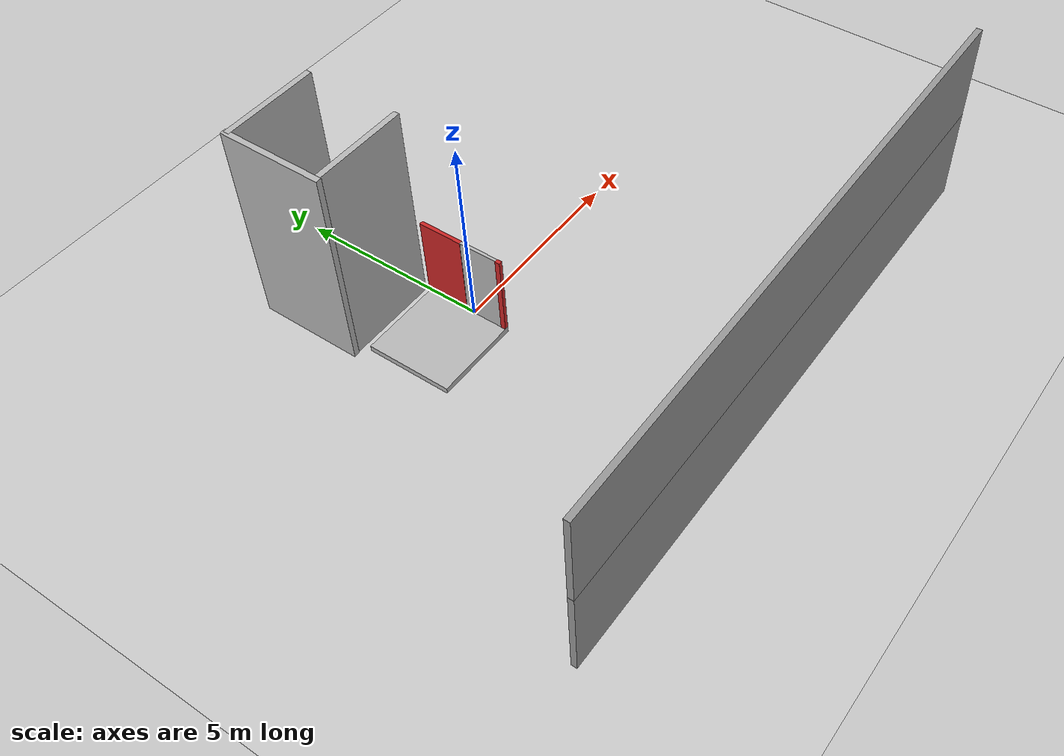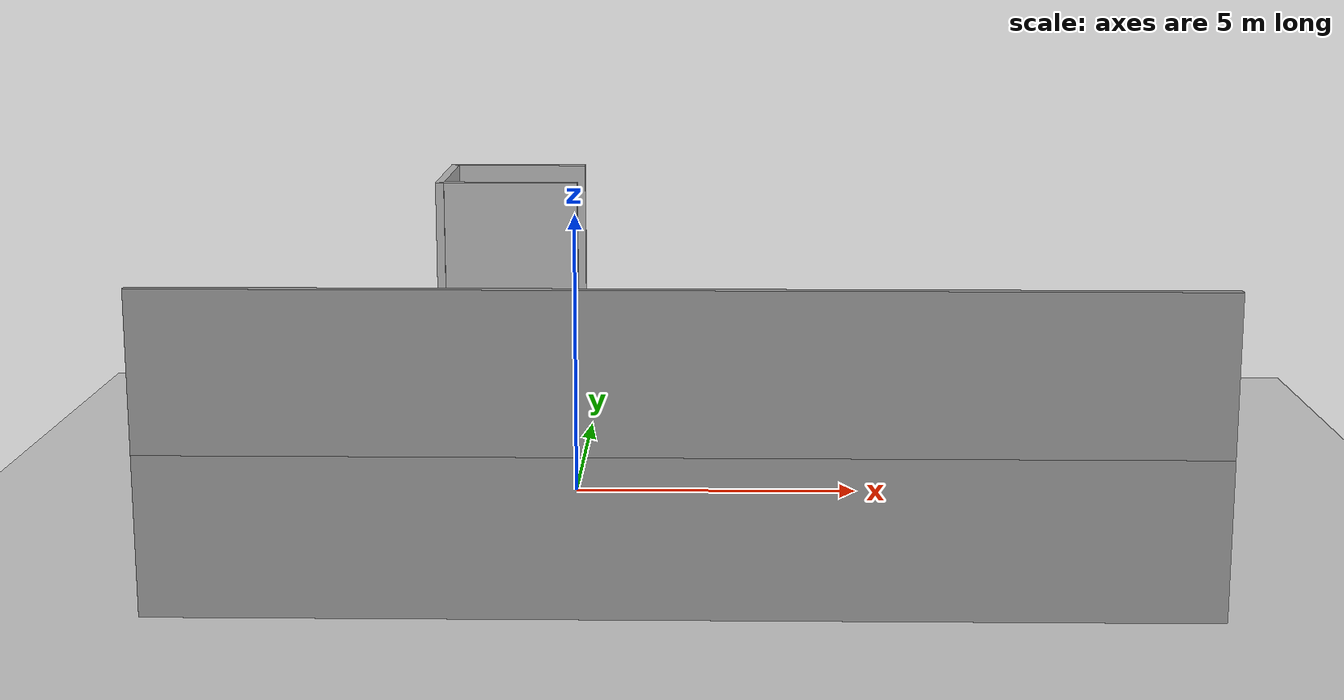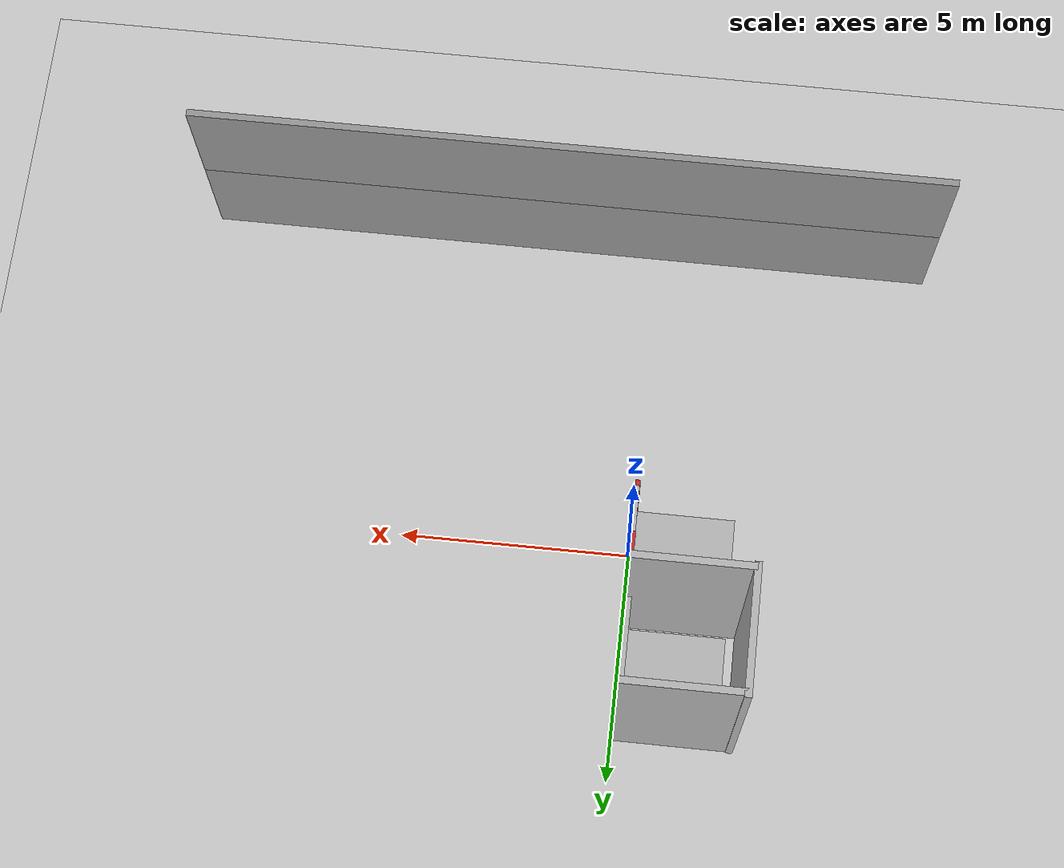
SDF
<sdf version="1.6">
 <world name="default">
  <model name="ground_plane">
   <static>1</static>
   <link name="link">
    <collision name="collision">
     <geometry><plane><normal>0 0 1</normal><size>100 100</size></plane></geometry>
     <surface>
      <contact><collide_bitmask>65535</collide_bitmask></contact>
      <friction><ode><mu>100</mu><mu2>50</mu2></ode></friction>
     </surface>
    </collision>
    <visual name="visual">
     <cast_shadows>0</cast_shadows>
     <geometry><plane><normal>0 0 1</normal><size>100 100</size></plane></geometry>
     <material>
      <script><uri>file://media/materials/scripts/gazebo.material</uri><name>Gazebo/Grey</name></script>
     </material>
    </visual>
   </link>
  </model>
  <model name="bush_refined_2floors">
   <pose>3.42472 8.10808 0 0 -0 0</pose>
   <link name="Wall_57">
    <collision name="Wall_57_Collision">
     <geometry><box><size>16.25 0.15 2.5</size></box></geometry>
     <pose>0 0 1.25 0 -0 0</pose>
    </collision>
    <visual name="Wall_57_Visual">
     <pose>0 0 1.25 0 -0 0</pose>
     <geometry><box><size>16.25 0.15 2.5</size></box></geometry>
     <material>
      <script><uri>file://media/materials/scripts/gazebo.material</uri><name>Gazebo/Grey</name></script>
      <ambient>1 1 1 1</ambient>
     </material>
     <meta><layer>0</layer></meta>
    </visual>
    <pose>-1.41697 -15.3834 0 0 -0 0</pose>
   </link>
   <link name="Wall_990">
    <collision name="Wall_990_Collision">
     <geometry><box><size>16.25 0.15 2.5</size></box></geometry>
     <pose>0 0 1.25 0 -0 0</pose>
    </collision>
    <visual name="Wall_990_Visual">
     <pose>0 0 1.25 0 -0 0</pose>
     <geometry><box><size>16.25 0.15 2.5</size></box></geometry>
     <material>
      <script><uri>file://media/materials/scripts/gazebo.material</uri><name>Gazebo/Grey</name></script>
      <ambient>1 1 1 1</ambient>
     </material>
     <meta><layer>1</layer></meta>
    </visual>
    <pose>-1.41697 -15.3834 2.5 0 -0 0</pose>
   </link>
   <static>1</static>
  </model>
  <model name="elevator_shaft">
   <link name="link">
    <visual name="shaft_wall2_visual">
     <pose>0 -1.25 3 0 -0 0</pose>
     <geometry><box><size>2.5 0.15 6</size></box></geometry>
    </visual>
    <visual name="shaft_wall3_visual">
     <pose>-1.25 0 3 0 -0 0</pose>
     <geometry><box><size>0.15 2.7 6</size></box></geometry>
    </visual>
    <visual name="floor0_visual">
     <pose>1.19 0 0.075 0 -0 0</pose>
     <geometry><box><size>0.12 2.5 0.15</size></box></geometry>
    </visual>
    <visual name="floor1_visual">
     <pose>1.19 0 3.075 0 -0 0</pose>
     <geometry><box><size>0.12 2.5 0.15</size></box></geometry>
    </visual>
    <visual name="shaft_wall1_visual">
     <pose>0 1.25 3 0 -0 0</pose>
     <geometry><box><size>2.5 0.15 6</size></box></geometry>
    </visual>
    <collision name="shaft_wall1_collision">
     <pose>0 1.25 3 0 -0 0</pose>
     <geometry><box><size>2.5 0.15 6</size></box></geometry>
     <surface>
      <friction>
       <ode><mu>1</mu><mu2>1</mu2><fdir1>0 0 0</fdir1><slip1>0</slip1><slip2>0</slip2></ode>
       <torsional>
        <coefficient>1</coefficient>
        <patch_radius>0</patch_radius>
        <surface_radius>0</surface_radius>
        <use_patch_radius>1</use_patch_radius>
        <ode><slip>0</slip></ode>
       </torsional>
      </friction>
      <bounce><restitution_coefficient>0</restitution_coefficient><threshold>1e+06</threshold></bounce>
      <contact>
       <collide_without_contact>0</collide_without_contact>
       <collide_without_contact_bitmask>1</collide_without_contact_bitmask>
       <collide_bitmask>1</collide_bitmask>
       <ode>
        <soft_cfm>0</soft_cfm>
        <soft_erp>0.2</soft_erp>
        <kp>1e+13</kp>
        <kd>1</kd>
        <max_vel>0.01</max_vel>
        <min_depth>0</min_depth>
       </ode>
       <bullet>
        <split_impulse>1</split_impulse>
        <split_impulse_penetration_threshold>-0.01</split_impulse_penetration_threshold>
        <soft_cfm>0</soft_cfm>
        <soft_erp>0.2</soft_erp>
        <kp>1e+13</kp>
        <kd>1</kd>
       </bullet>
      </contact>
     </surface>
    </collision>
    <collision name="shaft_wall2_collision">
     <pose>0 -1.25 3 0 -0 0</pose>
     <geometry><box><size>2.5 0.15 6</size></box></geometry>
     <surface>
      <friction>
       <ode><mu>1</mu><mu2>1</mu2><fdir1>0 0 0</fdir1><slip1>0</slip1><slip2>0</slip2></ode>
       <torsional>
        <coefficient>1</coefficient>
        <patch_radius>0</patch_radius>
        <surface_radius>0</surface_radius>
        <use_patch_radius>1</use_patch_radius>
        <ode><slip>0</slip></ode>
       </torsional>
      </friction>
      <bounce><restitution_coefficient>0</restitution_coefficient><threshold>1e+06</threshold></bounce>
      <contact>
       <collide_without_contact>0</collide_without_contact>
       <collide_without_contact_bitmask>1</collide_without_contact_bitmask>
       <collide_bitmask>1</collide_bitmask>
       <ode>
        <soft_cfm>0</soft_cfm>
        <soft_erp>0.2</soft_erp>
        <kp>1e+13</kp>
        <kd>1</kd>
        <max_vel>0.01</max_vel>
        <min_depth>0</min_depth>
       </ode>
       <bullet>
        <split_impulse>1</split_impulse>
        <split_impulse_penetration_threshold>-0.01</split_impulse_penetration_threshold>
        <soft_cfm>0</soft_cfm>
        <soft_erp>0.2</soft_erp>
        <kp>1e+13</kp>
        <kd>1</kd>
       </bullet>
      </contact>
     </surface>
    </collision>
    <collision name="shaft_wall3_collision">
     <pose>-1.25 0 3 0 -0 0</pose>
     <geometry><box><size>0.15 2.7 6</size></box></geometry>
     <surface>
      <friction>
       <ode><mu>1</mu><mu2>1</mu2><fdir1>0 0 0</fdir1><slip1>0</slip1><slip2>0</slip2></ode>
       <torsional>
        <coefficient>1</coefficient>
        <patch_radius>0</patch_radius>
        <surface_radius>0</surface_radius>
        <use_patch_radius>1</use_patch_radius>
        <ode><slip>0</slip></ode>
       </torsional>
      </friction>
      <bounce><restitution_coefficient>0</restitution_coefficient><threshold>1e+06</threshold></bounce>
      <contact>
       <collide_without_contact>0</collide_without_contact>
       <collide_without_contact_bitmask>1</collide_without_contact_bitmask>
       <collide_bitmask>1</collide_bitmask>
       <ode>
        <soft_cfm>0</soft_cfm>
        <soft_erp>0.2</soft_erp>
        <kp>1e+13</kp>
        <kd>1</kd>
        <max_vel>0.01</max_vel>
        <min_depth>0</min_depth>
       </ode>
       <bullet>
        <split_impulse>1</split_impulse>
        <split_impulse_penetration_threshold>-0.01</split_impulse_penetration_threshold>
        <soft_cfm>0</soft_cfm>
        <soft_erp>0.2</soft_erp>
        <kp>1e+13</kp>
        <kd>1</kd>
       </bullet>
      </contact>
     </surface>
    </collision>
    <collision name="floor0_collision">
     <pose>1.19 0 0.075 0 -0 0</pose>
     <geometry><box><size>0.12 2.5 0.15</size></box></geometry>
     <surface>
      <friction>
       <ode><mu>1</mu><mu2>1</mu2><fdir1>0 0 0</fdir1><slip1>0</slip1><slip2>0</slip2></ode>
       <torsional>
        <coefficient>1</coefficient>
        <patch_radius>0</patch_radius>
        <surface_radius>0</surface_radius>
        <use_patch_radius>1</use_patch_radius>
        <ode><slip>0</slip></ode>
       </torsional>
      </friction>
      <bounce><restitution_coefficient>0</restitution_coefficient><threshold>1e+06</threshold></bounce>
      <contact>
       <collide_without_contact>0</collide_without_contact>
       <collide_without_contact_bitmask>1</collide_without_contact_bitmask>
       <collide_bitmask>1</collide_bitmask>
       <ode>
        <soft_cfm>0</soft_cfm>
        <soft_erp>0.2</soft_erp>
        <kp>1e+13</kp>
        <kd>1</kd>
        <max_vel>0.01</max_vel>
        <min_depth>0</min_depth>
       </ode>
       <bullet>
        <split_impulse>1</split_impulse>
        <split_impulse_penetration_threshold>-0.01</split_impulse_penetration_threshold>
        <soft_cfm>0</soft_cfm>
        <soft_erp>0.2</soft_erp>
        <kp>1e+13</kp>
        <kd>1</kd>
       </bullet>
      </contact>
     </surface>
    </collision>
    <collision name="floor1_collision">
     <pose>1.19 0 3.075 0 -0 0</pose>
     <geometry><box><size>0.12 2.5 0.15</size></box></geometry>
     <surface>
      <friction>
       <ode><mu>1</mu><mu2>1</mu2><fdir1>0 0 0</fdir1><slip1>0</slip1><slip2>0</slip2></ode>
       <torsional>
        <coefficient>1</coefficient>
        <patch_radius>0</patch_radius>
        <surface_radius>0</surface_radius>
        <use_patch_radius>1</use_patch_radius>
        <ode><slip>0</slip></ode>
       </torsional>
      </friction>
      <bounce><restitution_coefficient>0</restitution_coefficient><threshold>1e+06</threshold></bounce>
      <contact>
       <collide_without_contact>0</collide_without_contact>
       <collide_without_contact_bitmask>1</collide_without_contact_bitmask>
       <collide_bitmask>1</collide_bitmask>
       <ode>
        <soft_cfm>0</soft_cfm>
        <soft_erp>0.2</soft_erp>
        <kp>1e+13</kp>
        <kd>1</kd>
        <max_vel>0.01</max_vel>
        <min_depth>0</min_depth>
       </ode>
       <bullet>
        <split_impulse>1</split_impulse>
        <split_impulse_penetration_threshold>-0.01</split_impulse_penetration_threshold>
        <soft_cfm>0</soft_cfm>
        <soft_erp>0.2</soft_erp>
        <kp>1e+13</kp>
        <kd>1</kd>
       </bullet>
      </contact>
     </surface>
    </collision>
   </link>
   <static>1</static>
   <pose>-1.29495 2.76524 -0.62939 0 -0 0</pose>
  </model>
  <model name="elevator_0">
   <link name="link">
    <inertial>
     <mass>800</mass>
     <inertia><ixx>1</ixx><ixy>0</ixy><ixz>0</ixz><iyy>1</iyy><iyz>0</iyz><izz>1</izz></inertia>
    </inertial>
    <visual name="floor_visual"><geometry><box><size>2.25 2.25 0.15</size></box></geometry></visual>
    <visual name="wall1_visual">
     <pose>1.0745 0.5725 1.125 0 -0 0</pose>
     <geometry><box><size>0.1 1.15 2.25</size></box></geometry>
     <material><script><name>Gazebo/Red</name><uri>__default__</uri></script></material>
    </visual>
    <visual name="wall2_visual">
     <pose>1.0745 -1.0625 1.125 0 -0 0</pose>
     <geometry><box><size>0.1 0.125 2.25</size></box></geometry>
     <material><script><name>Gazebo/Red</name><uri>__default__</uri></script></material>
    </visual>
    <collision name="wall1_collision">
     <pose>1.0745 0.5725 1.125 0 -0 0</pose>
     <geometry><box><size>0.1 1.15 2.25</size></box></geometry>
     <surface>
      <friction>
       <ode><mu>1</mu><mu2>1</mu2><fdir1>0 0 0</fdir1><slip1>0</slip1><slip2>0</slip2></ode>
       <torsional>
        <coefficient>1</coefficient>
        <patch_radius>0</patch_radius>
        <surface_radius>0</surface_radius>
        <use_patch_radius>1</use_patch_radius>
        <ode><slip>0</slip></ode>
       </torsional>
      </friction>
      <bounce><restitution_coefficient>0</restitution_coefficient><threshold>1e+06</threshold></bounce>
      <contact>
       <collide_without_contact>0</collide_without_contact>
       <collide_without_contact_bitmask>1</collide_without_contact_bitmask>
       <collide_bitmask>1</collide_bitmask>
       <ode>
        <soft_cfm>0</soft_cfm>
        <soft_erp>0.2</soft_erp>
        <kp>1e+13</kp>
        <kd>1</kd>
        <max_vel>0.01</max_vel>
        <min_depth>0</min_depth>
       </ode>
       <bullet>
        <split_impulse>1</split_impulse>
        <split_impulse_penetration_threshold>-0.01</split_impulse_penetration_threshold>
        <soft_cfm>0</soft_cfm>
        <soft_erp>0.2</soft_erp>
        <kp>1e+13</kp>
        <kd>1</kd>
       </bullet>
      </contact>
     </surface>
    </collision>
    <collision name="wall2_collision">
     <pose>1.0745 -1.0625 1.125 0 -0 0</pose>
     <geometry><box><size>0.1 0.125 2.25</size></box></geometry>
     <surface>
      <friction>
       <ode><mu>1</mu><mu2>1</mu2><fdir1>0 0 0</fdir1><slip1>0</slip1><slip2>0</slip2></ode>
       <torsional>
        <coefficient>1</coefficient>
        <patch_radius>0</patch_radius>
        <surface_radius>0</surface_radius>
        <use_patch_radius>1</use_patch_radius>
        <ode><slip>0</slip></ode>
       </torsional>
      </friction>
      <bounce><restitution_coefficient>0</restitution_coefficient><threshold>1e+06</threshold></bounce>
      <contact>
       <collide_without_contact>0</collide_without_contact>
       <collide_without_contact_bitmask>1</collide_without_contact_bitmask>
       <collide_bitmask>1</collide_bitmask>
       <ode>
        <soft_cfm>0</soft_cfm>
        <soft_erp>0.2</soft_erp>
        <kp>1e+13</kp>
        <kd>1</kd>
        <max_vel>0.01</max_vel>
        <min_depth>0</min_depth>
       </ode>
       <bullet>
        <split_impulse>1</split_impulse>
        <split_impulse_penetration_threshold>-0.01</split_impulse_penetration_threshold>
        <soft_cfm>0</soft_cfm>
        <soft_erp>0.2</soft_erp>
        <kp>1e+13</kp>
        <kd>1</kd>
       </bullet>
      </contact>
     </surface>
    </collision>
    <collision name="floor_collision">
     <geometry><box><size>2.25 2.25 0.15</size></box></geometry>
     <surface>
      <friction>
       <ode><mu>1</mu><mu2>1</mu2><fdir1>0 0 0</fdir1><slip1>0</slip1><slip2>0</slip2></ode>
       <torsional>
        <coefficient>1</coefficient>
        <patch_radius>0</patch_radius>
        <surface_radius>0</surface_radius>
        <use_patch_radius>1</use_patch_radius>
        <ode><slip>0</slip></ode>
       </torsional>
      </friction>
      <bounce><restitution_coefficient>0</restitution_coefficient><threshold>1e+06</threshold></bounce>
      <contact>
       <collide_without_contact>0</collide_without_contact>
       <collide_without_contact_bitmask>1</collide_without_contact_bitmask>
       <collide_bitmask>1</collide_bitmask>
       <ode>
        <soft_cfm>0</soft_cfm>
        <soft_erp>0.2</soft_erp>
        <kp>1e+13</kp>
        <kd>1</kd>
        <max_vel>0.01</max_vel>
        <min_depth>0</min_depth>
       </ode>
       <bullet>
        <split_impulse>1</split_impulse>
        <split_impulse_penetration_threshold>-0.01</split_impulse_penetration_threshold>
        <soft_cfm>0</soft_cfm>
        <soft_erp>0.2</soft_erp>
        <kp>1e+13</kp>
        <kd>1</kd>
       </bullet>
      </contact>
     </surface>
    </collision>
   </link>
   <link name="door">
    <pose>1.0745 -0.5 1.125 0 -0 0</pose>
    <inertial>
     <inertia><ixx>1</ixx><ixy>0</ixy><ixz>0</ixz><iyy>1</iyy><iyz>0</iyz><izz>1</izz></inertia>
     <mass>1</mass>
    </inertial>
    <visual name="visual"><geometry><box><size>0.08 1 2.25</size></box></geometry></visual>
    <collision name="collision">
     <geometry><box><size>0.08 1 2.25</size></box></geometry>
     <surface>
      <friction>
       <ode><mu>1</mu><mu2>1</mu2><fdir1>0 0 0</fdir1><slip1>0</slip1><slip2>0</slip2></ode>
       <torsional>
        <coefficient>1</coefficient>
        <patch_radius>0</patch_radius>
        <surface_radius>0</surface_radius>
        <use_patch_radius>1</use_patch_radius>
        <ode><slip>0</slip></ode>
       </torsional>
      </friction>
      <bounce><restitution_coefficient>0</restitution_coefficient><threshold>1e+06</threshold></bounce>
      <contact>
       <collide_without_contact>0</collide_without_contact>
       <collide_without_contact_bitmask>1</collide_without_contact_bitmask>
       <collide_bitmask>1</collide_bitmask>
       <ode>
        <soft_cfm>0</soft_cfm>
        <soft_erp>0.2</soft_erp>
        <kp>1e+13</kp>
        <kd>1</kd>
        <max_vel>0.01</max_vel>
        <min_depth>0</min_depth>
       </ode>
       <bullet>
        <split_impulse>1</split_impulse>
        <split_impulse_penetration_threshold>-0.01</split_impulse_penetration_threshold>
        <soft_cfm>0</soft_cfm>
        <soft_erp>0.2</soft_erp>
        <kp>1e+13</kp>
        <kd>1</kd>
       </bullet>
      </contact>
     </surface>
    </collision>
   </link>
   <joint name="door" type="prismatic">
    <parent>link</parent>
    <child>door</child>
    <axis>
     <xyz>0 1 0</xyz>
     <use_parent_model_frame>0</use_parent_model_frame>
     <limit><lower>0</lower><upper>1</upper><effort>10</effort><velocity>-1</velocity></limit>
     <dynamics>
      <spring_reference>0</spring_reference>
      <spring_stiffness>0</spring_stiffness>
      <damping>2</damping>
      <friction>0</friction>
     </dynamics>
    </axis>
    <physics>
     <ode><limit><cfm>0</cfm><erp>0.2</erp></limit><suspension><cfm>0</cfm><erp>0.2</erp></suspension></ode>
    </physics>
   </joint>
   <static>0</static>
   <plugin name="elevator_plugin" filename="libElevatorPlugin.so">
    <lift_joint>elevator::lift</lift_joint>
    <door_joint>elevator::door</door_joint>
    <floor_height>3.075</floor_height>
    <door_wait_time>10</door_wait_time>
    <topic>~/elevator</topic>
   </plugin>
   <pose>-1.15263 2.79027 0.074787 0 0.000343 0.002216</pose>
  </model>
  <model name="elevator">
   <link name="link">
    <inertial>
     <mass>800</mass>
     <inertia><ixx>1</ixx><ixy>0</ixy><ixz>0</ixz><iyy>1</iyy><iyz>0</iyz><izz>1</izz></inertia>
    </inertial>
    <visual name="floor_visual"><geometry><box><size>2.25 2.25 0.15</size></box></geometry></visual>
    <visual name="wall1_visual">
     <pose>1.0745 0.5725 1.125 0 -0 0</pose>
     <geometry><box><size>0.1 1.15 2.25</size></box></geometry>
     <material><script><name>Gazebo/Red</name><uri>__default__</uri></script></material>
    </visual>
    <visual name="wall2_visual">
     <pose>1.0745 -1.0625 1.125 0 -0 0</pose>
     <geometry><box><size>0.1 0.125 2.25</size></box></geometry>
     <material><script><name>Gazebo/Red</name><uri>__default__</uri></script></material>
    </visual>
    <collision name="wall1_collision">
     <pose>1.0745 0.5725 1.125 0 -0 0</pose>
     <geometry><box><size>0.1 1.15 2.25</size></box></geometry>
     <surface>
      <friction>
       <ode><mu>1</mu><mu2>1</mu2><fdir1>0 0 0</fdir1><slip1>0</slip1><slip2>0</slip2></ode>
       <torsional>
        <coefficient>1</coefficient>
        <patch_radius>0</patch_radius>
        <surface_radius>0</surface_radius>
        <use_patch_radius>1</use_patch_radius>
        <ode><slip>0</slip></ode>
       </torsional>
      </friction>
      <bounce><restitution_coefficient>0</restitution_coefficient><threshold>1e+06</threshold></bounce>
      <contact>
       <collide_without_contact>0</collide_without_contact>
       <collide_without_contact_bitmask>1</collide_without_contact_bitmask>
       <collide_bitmask>1</collide_bitmask>
       <ode>
        <soft_cfm>0</soft_cfm>
        <soft_erp>0.2</soft_erp>
        <kp>1e+13</kp>
        <kd>1</kd>
        <max_vel>0.01</max_vel>
        <min_depth>0</min_depth>
       </ode>
       <bullet>
        <split_impulse>1</split_impulse>
        <split_impulse_penetration_threshold>-0.01</split_impulse_penetration_threshold>
        <soft_cfm>0</soft_cfm>
        <soft_erp>0.2</soft_erp>
        <kp>1e+13</kp>
        <kd>1</kd>
       </bullet>
      </contact>
     </surface>
    </collision>
    <collision name="wall2_collision">
     <pose>1.0745 -1.0625 1.125 0 -0 0</pose>
     <geometry><box><size>0.1 0.125 2.25</size></box></geometry>
     <surface>
      <friction>
       <ode><mu>1</mu><mu2>1</mu2><fdir1>0 0 0</fdir1><slip1>0</slip1><slip2>0</slip2></ode>
       <torsional>
        <coefficient>1</coefficient>
        <patch_radius>0</patch_radius>
        <surface_radius>0</surface_radius>
        <use_patch_radius>1</use_patch_radius>
        <ode><slip>0</slip></ode>
       </torsional>
      </friction>
      <bounce><restitution_coefficient>0</restitution_coefficient><threshold>1e+06</threshold></bounce>
      <contact>
       <collide_without_contact>0</collide_without_contact>
       <collide_without_contact_bitmask>1</collide_without_contact_bitmask>
       <collide_bitmask>1</collide_bitmask>
       <ode>
        <soft_cfm>0</soft_cfm>
        <soft_erp>0.2</soft_erp>
        <kp>1e+13</kp>
        <kd>1</kd>
        <max_vel>0.01</max_vel>
        <min_depth>0</min_depth>
       </ode>
       <bullet>
        <split_impulse>1</split_impulse>
        <split_impulse_penetration_threshold>-0.01</split_impulse_penetration_threshold>
        <soft_cfm>0</soft_cfm>
        <soft_erp>0.2</soft_erp>
        <kp>1e+13</kp>
        <kd>1</kd>
       </bullet>
      </contact>
     </surface>
    </collision>
    <collision name="floor_collision">
     <geometry><box><size>2.25 2.25 0.15</size></box></geometry>
     <surface>
      <friction>
       <ode><mu>1</mu><mu2>1</mu2><fdir1>0 0 0</fdir1><slip1>0</slip1><slip2>0</slip2></ode>
       <torsional>
        <coefficient>1</coefficient>
        <patch_radius>0</patch_radius>
        <surface_radius>0</surface_radius>
        <use_patch_radius>1</use_patch_radius>
        <ode><slip>0</slip></ode>
       </torsional>
      </friction>
      <bounce><restitution_coefficient>0</restitution_coefficient><threshold>1e+06</threshold></bounce>
      <contact>
       <collide_without_contact>0</collide_without_contact>
       <collide_without_contact_bitmask>1</collide_without_contact_bitmask>
       <collide_bitmask>1</collide_bitmask>
       <ode>
        <soft_cfm>0</soft_cfm>
        <soft_erp>0.2</soft_erp>
        <kp>1e+13</kp>
        <kd>1</kd>
        <max_vel>0.01</max_vel>
        <min_depth>0</min_depth>
       </ode>
       <bullet>
        <split_impulse>1</split_impulse>
        <split_impulse_penetration_threshold>-0.01</split_impulse_penetration_threshold>
        <soft_cfm>0</soft_cfm>
        <soft_erp>0.2</soft_erp>
        <kp>1e+13</kp>
        <kd>1</kd>
       </bullet>
      </contact>
     </surface>
    </collision>
   </link>
   <link name="door">
    <pose>1.0745 -0.5 1.125 0 -0 0</pose>
    <inertial>
     <inertia><ixx>1</ixx><ixy>0</ixy><ixz>0</ixz><iyy>1</iyy><iyz>0</iyz><izz>1</izz></inertia>
     <mass>1</mass>
    </inertial>
    <visual name="visual"><geometry><box><size>0.08 1 2.25</size></box></geometry></visual>
    <collision name="collision">
     <geometry><box><size>0.08 1 2.25</size></box></geometry>
     <surface>
      <friction>
       <ode><mu>1</mu><mu2>1</mu2><fdir1>0 0 0</fdir1><slip1>0</slip1><slip2>0</slip2></ode>
       <torsional>
        <coefficient>1</coefficient>
        <patch_radius>0</patch_radius>
        <surface_radius>0</surface_radius>
        <use_patch_radius>1</use_patch_radius>
        <ode><slip>0</slip></ode>
       </torsional>
      </friction>
      <bounce><restitution_coefficient>0</restitution_coefficient><threshold>1e+06</threshold></bounce>
      <contact>
       <collide_without_contact>0</collide_without_contact>
       <collide_without_contact_bitmask>1</collide_without_contact_bitmask>
       <collide_bitmask>1</collide_bitmask>
       <ode>
        <soft_cfm>0</soft_cfm>
        <soft_erp>0.2</soft_erp>
        <kp>1e+13</kp>
        <kd>1</kd>
        <max_vel>0.01</max_vel>
        <min_depth>0</min_depth>
       </ode>
       <bullet>
        <split_impulse>1</split_impulse>
        <split_impulse_penetration_threshold>-0.01</split_impulse_penetration_threshold>
        <soft_cfm>0</soft_cfm>
        <soft_erp>0.2</soft_erp>
        <kp>1e+13</kp>
        <kd>1</kd>
       </bullet>
      </contact>
     </surface>
    </collision>
   </link>
   <joint name="door" type="prismatic">
    <parent>link</parent>
    <child>door</child>
    <axis>
     <xyz>0 1 0</xyz>
     <use_parent_model_frame>0</use_parent_model_frame>
     <limit><lower>0</lower><upper>1</upper><effort>10</effort><velocity>-1</velocity></limit>
     <dynamics>
      <spring_reference>0</spring_reference>
      <spring_stiffness>0</spring_stiffness>
      <damping>2</damping>
      <friction>0</friction>
     </dynamics>
    </axis>
    <physics>
     <ode><limit><cfm>0</cfm><erp>0.2</erp></limit><suspension><cfm>0</cfm><erp>0.2</erp></suspension></ode>
    </physics>
   </joint>
   <static>0</static>
   <plugin name="elevator_plugin" filename="libElevatorPlugin.so">
    <lift_joint>elevator::lift</lift_joint>
    <door_joint>elevator::door</door_joint>
    <floor_height>3.075</floor_height>
    <door_wait_time>10</door_wait_time>
    <topic>~/elevator</topic>
   </plugin>
   <pose>-1.14567 0.097938 0.074788 0 -0.000342 0.001073</pose>
  </model>
 </world>
</sdf>
